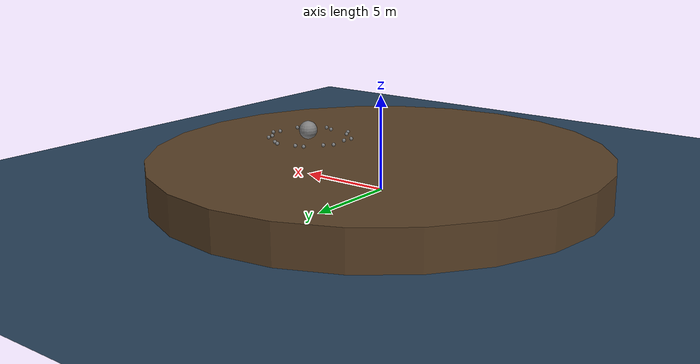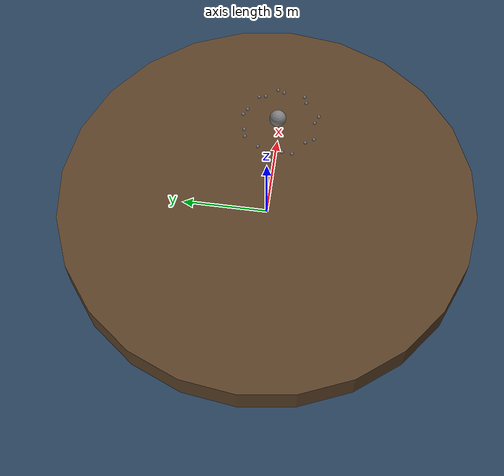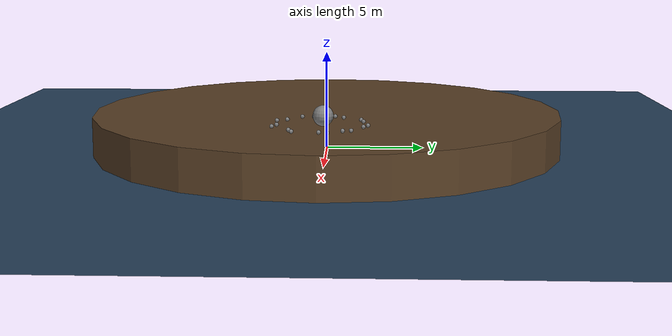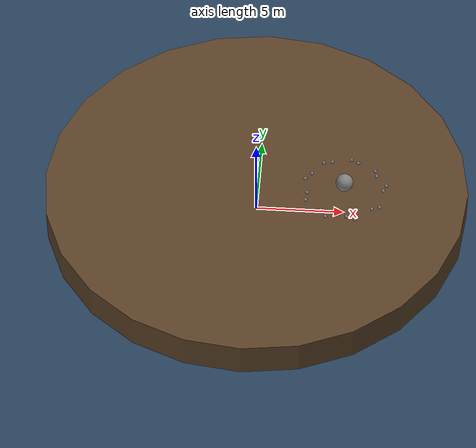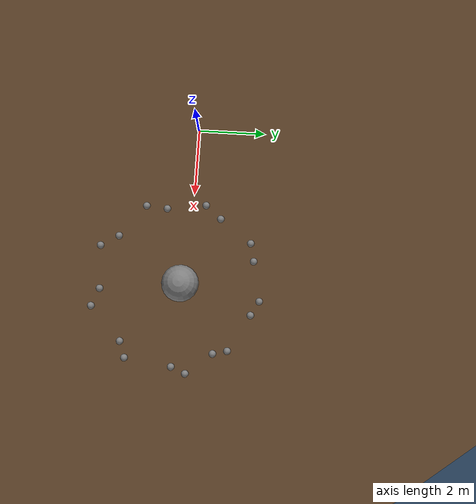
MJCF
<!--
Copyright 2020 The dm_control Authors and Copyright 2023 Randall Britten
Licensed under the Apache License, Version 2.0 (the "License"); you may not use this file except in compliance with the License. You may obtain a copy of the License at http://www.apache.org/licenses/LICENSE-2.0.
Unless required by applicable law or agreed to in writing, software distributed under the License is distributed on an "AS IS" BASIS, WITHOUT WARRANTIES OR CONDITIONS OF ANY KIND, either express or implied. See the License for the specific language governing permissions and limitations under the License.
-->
<mujoco model="Ball on Turntable - Flock">
  <option integrator="RK4" noslip_iterations="100" />
  <asset>
    <texture name="grid_floor" type="2d" builtin="checker" rgb1=".1 .2 .3" rgb2=".2 .3 .4" width="300" height="300"/>
    <material name="grid_floor" texture="grid_floor" texrepeat="8 8" reflectance=".2"/>

    <texture name="grid_turntable" type="2d" builtin="checker" rgb1=".3 .2 .1" rgb2=".4 .3 .2" width="300" height="300"/>
    <material name="grid_turntable" texture="grid_turntable" texrepeat="4 4" reflectance=".2"/>

    <texture name="grid_ball" type="2d" builtin="checker" rgb1="1 1 1" rgb2="0 0 0" width="100" height="100"/>
    <material name="grid_ball" texture="grid_ball" texrepeat="1 1" reflectance=".2"/>
  </asset>
  <worldbody>
    <body name="turntable" pos="0 0 1.01">
      <joint name="axle" type="hinge" axis="0 0 1" pos="0 0 0"/>
      <geom name="turntable_geom" type="cylinder" pos="0 0 0" size="12 1" material="grid_turntable"/>
    </body>

    <geom size="50 50 .01" type="plane" material="grid_floor"/>
    <light pos="0 5 20"/>
    <light directional="true" castshadow="false"/>
    <camera name="closeup" pos="5 -15 15" xyaxes="1 0 0 0 1 1"/>

    <body name="ball_at_steady_state" pos="5 0 2.51">
      <freejoint/>
      <geom name="ball_at_steady_state_geom" type="sphere" size=".5" material="grid_ball" />
    </body>

    <body name="ball00" pos="6.800507613271711 0.9689249838594978 2.11">
      <freejoint/>
      <geom name="ball00_geom" type="sphere" size="0.1" material="grid_ball" />
    </body>

    <body name="ball01" pos="5.709474975200095 1.920970714994796 2.11">
      <freejoint/>
      <geom name="ball01_geom" type="sphere" size="0.1" material="grid_ball" />
    </body>

    <body name="ball02" pos="4.239198820596542 1.9204205989759264 2.11">
      <freejoint/>
      <geom name="ball02_geom" type="sphere" size="0.1" material="grid_ball" />
    </body>

    <body name="ball03" pos="3.1189409151491083 0.9487172135645483 2.11">
      <freejoint/>
      <geom name="ball03_geom" type="sphere" size="0.1" material="grid_ball" />
    </body>

    <body name="ball04" pos="2.914630516204538 -0.5354677826891229 2.11">
      <freejoint/>
      <geom name="ball04_geom" type="sphere" size="0.1" material="grid_ball" />
    </body>

    <body name="ball05" pos="3.7474059562705997 -1.7945102637409682 2.11">
      <freejoint/>
      <geom name="ball05_geom" type="sphere" size="0.1" material="grid_ball" />
    </body>

    <body name="ball06" pos="5.220653043017483 -2.20341288623766 2.11">
      <freejoint/>
      <geom name="ball06_geom" type="sphere" size="0.1" material="grid_ball" />
    </body>

    <body name="ball07" pos="6.610167776509038 -1.5406124526198182 2.11">
      <freejoint/>
      <geom name="ball07_geom" type="sphere" size="0.1" material="grid_ball" />
    </body>

    <body name="ball08" pos="7.212221427418512 -0.11785200835729726 2.11">
      <freejoint/>
      <geom name="ball08_geom" type="sphere" size="0.1" material="grid_ball" />
    </body>

    <body name="ball09" pos="6.703595960967122 1.3569613682556028 2.11">
      <freejoint/>
      <geom name="ball09_geom" type="sphere" size="0.1" material="grid_ball" />
    </body>

    <body name="ball10" pos="5.3213140020719765 2.134528658876475 2.11">
      <freejoint/>
      <geom name="ball10_geom" type="sphere" size="0.1" material="grid_ball" />
    </body>

    <body name="ball11" pos="3.7462678851582245 1.8097585045316633 2.11">
      <freejoint/>
      <geom name="ball11_geom" type="sphere" size="0.1" material="grid_ball" />
    </body>

    <body name="ball12" pos="2.7623515577171753 0.5224357209000688 2.11">
      <freejoint/>
      <geom name="ball12_geom" type="sphere" size="0.1" material="grid_ball" />
    </body>

    <body name="ball13" pos="2.8704667956398966 -1.1067635412929722 2.11">
      <freejoint/>
      <geom name="ball13_geom" type="sphere" size="0.1" material="grid_ball" />
    </body>

    <body name="ball14" pos="4.038672198254207 -2.276781567836367 2.11">
      <freejoint/>
      <geom name="ball14_geom" type="sphere" size="0.1" material="grid_ball" />
    </body>

    <body name="ball15" pos="5.70629010755536 -2.396396980431915 2.11">
      <freejoint/>
      <geom name="ball15_geom" type="sphere" size="0.1" material="grid_ball" />
    </body>

    <body name="ball16" pos="7.046566011154354 -1.3838940453699422 2.11">
      <freejoint/>
      <geom name="ball16_geom" type="sphere" size="0.1" material="grid_ball" />
    </body>

    <body name="ball17" pos="7.372987959140701 0.2710397639391724 2.11">
      <freejoint/>
      <geom name="ball17_geom" type="sphere" size="0.1" material="grid_ball" />
    </body>

  </worldbody>

  <actuator>
    <velocity name="velocity_ttbl" joint="axle" kv="1e5" ctrlrange="5 6" ctrllimited="true" />
  </actuator>

  <keyframe>
    <key name="spinning"
    qpos="0
    5 0 2.51 0 0 0 0
    6.800507613271711 0.9689249838594978 2.11 0.7671958026660487 -0.6386429365357119 -0.0476027107927235 0.03577403960729458
      5.709474975200095 1.920970714994796 2.11 0.8988095624275281 -0.42213701250790403 -0.06337589854321946 0.09962534137244765
      4.239198820596542 1.9204205989759264 2.11 -0.1882373776334534 0.968594135498407 0.159070605856369 -0.0329944342618919
      3.1189409151491083 0.9487172135645483 2.11 -0.8575979311901584 -0.5082008619522799 -0.04577391350839396 -0.06451682859104563
      2.914630516204538 -0.5354677826891229 2.11 -0.5530771184297602 -0.831234457098939 0.03814853630355065 0.0412270248594556
      3.7474059562705997 -1.7945102637409682 2.11 -0.35805159199264075 0.9237881498244666 -0.12507920056928645 0.052627989704840644
      5.220653043017483 -2.20341288623766 2.11 0.8634405397148782 -0.48168754581170453 0.059267796788105495 -0.13760403646209235
      6.610167776509038 -1.5406124526198182 2.11 -0.9622064055810825 -0.25089640214544673 0.02650760445310232 0.10250451382920622
      7.212221427418512 -0.11785200835729726 2.11 -0.7782863928031899 0.6277343898014797 0.007854846840808135 0.012574896384077678
      6.703595960967122 1.3569613682556028 2.11 -0.34846937370360515 0.9331507296175058 0.08350209108430967 -0.028743906997513786
      5.3213140020719765 2.134528658876475 2.11 0.8738358330071596 0.47018021567377893 0.0647343494431464 0.10559813324019858
      3.7462678851582245 1.8097585045316633 2.11 0.39463704988993065 -0.9042825702598023 -0.15114882396730892 0.06073438064060506
      2.7623515577171753 0.5224357209000688 2.11 -0.8302594148728124 0.5544107529692055 0.044718527705700846 -0.03603157347394787
      2.8704667956398966 -1.1067635412929722 2.11 0.552443911892424 0.8254305117228432 -0.08847244349258845 -0.07511871452848395
      4.038672198254207 -2.276781567836367 2.11 0.35393119260062167 0.918148018486593 -0.16047309380246963 -0.07736480607426344
      5.70629010755536 -2.396396980431915 2.11 -0.9776913430724214 -0.12595076888409498 0.025232046581495464 0.16619080998677235
      7.046566011154354 -1.3838940453699422 2.11 0.48553308377370624 -0.8716238714723191 0.05541634233661538 -0.03819005423971814
      7.372987959140701 0.2710397639391724 2.11 0.7983944234561235 0.6020307743573005 0.007424929207152422 -0.008376260930891466"
    qvel="5
       0 0 0 50 0 0
      -1.3816499637935875 2.5918403632691596 9.92896254617199e-06 316.48372558514984 7.924072781363098 -4.799310646247667
      -2.7949555687567367 1.0456302043207875 0.00038288890880565363 284.3686450239463 7.421896390803398 -4.2908787453161565
      -2.8300407504782457 -1.0545809841278957 -0.0007103571970843115 233.92674505913112 6.257362657108042 -3.624811173926018
      -1.4528982205831273 -2.669089225145521 -0.0007008596141373318 186.45869687261498 4.58042269310533 -3.1143617896520372
      0.6811880751681052 -2.9879052270087696 -0.000688092920141255 176.2845217976449 4.127154125992742 -2.500448028683309
      2.5120470730068987 -1.826635370373559 -0.00015038554717119345 214.11450640801115 5.780215727492521 -3.188226114280597
      3.127007103697411 0.2693993413220633 0.0002525303056290759 268.6756878358852 6.979161802724617 -4.082347487240713
      2.1839608304141813 2.2731436417430713 -0.0024984376319027828 311.7570800740861 8.400291908558842 -4.568023075625299
      0.11031992569323942 3.168166035680842 3.810640406573178e-05 328.8829788409546 8.359082615876238 -5.024867700838035
      -2.062266636372297 2.4675250195863763 -1.1787911338978082e-05 314.81176786984196 8.121454283835591 -5.124352764219625
      -3.2282452583511976 0.5029120570587166 -0.00018212388675587334 272.7769793738823 7.258388555846887 -4.134643963884779
      -2.7967218920391996 -1.7529888854963656 4.4275877136801755e-05 215.61667400591534 5.713047493643454 -3.2492423211248926
      -0.9631403984086888 -3.1788844484104253 0.00043490752013066884 171.28106716384795 5.048014721647753 -2.892533862344192
      1.384974230789896 -3.056889531254276 0.0013307228176955381 178.0113092724839 4.12134977465621 -2.5444427953666175
      3.091722481186635 -1.415055473985671 -0.0004144386007043072 229.80082497307927 5.941508664134664 -3.5139497690274246
      3.2888239886276316 0.9662349730340878 0.00012990547800074655 287.5835904964741 7.529903639489541 -4.215558303568295
      1.8295954343932475 2.91221998094438 -3.0240895032598148e-06 326.49495460323817 8.178286523226454 -5.2315970777311875
      -0.5900255179354446 3.41608557199917 -8.11835390954087e-05 334.74517726575584 9.051476786777725 -5.074209179898875" />
  </keyframe>

</mujoco>
